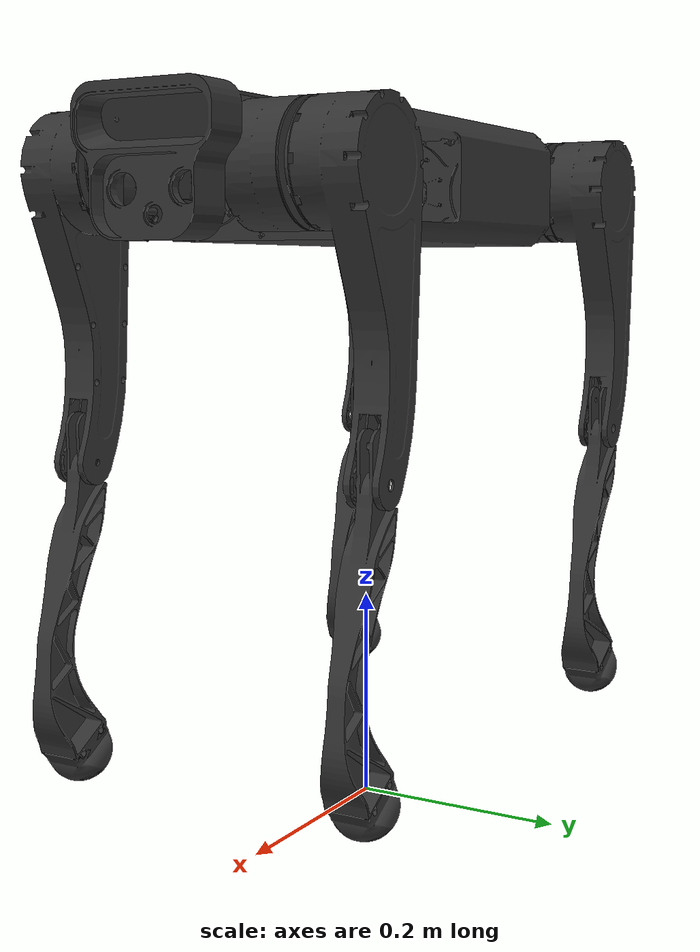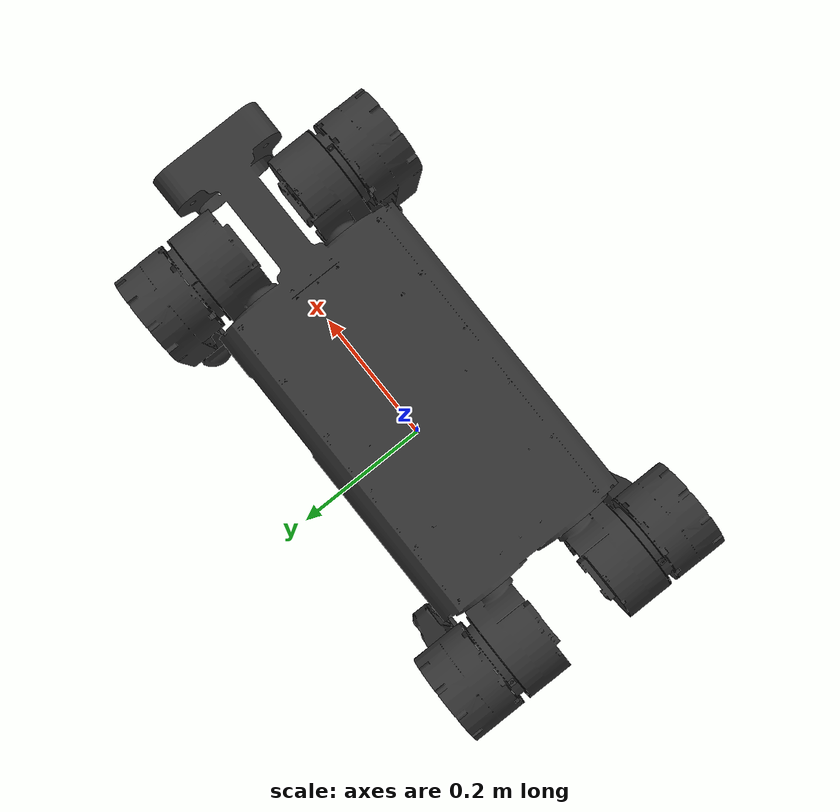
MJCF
<mujoco model="dhav1">
  <compiler angle="radian" meshdir="../meshes/"/>

  <default>
    <default class="dhav1">
      <default class="visual">
        <geom type="mesh" contype="0" conaffinity="0" group="2" material="dark"/>
      </default>
      <default class="collision">
        <geom group="3" type="capsule" contype="1" conaffinity="1"/>
        <default class="thigh1">
          <geom size="0.015" fromto="-0.02 0 0 -0.02 0 -0.16"/>
        </default>
        <default class="thigh2">
          <geom size="0.015" fromto="0 0 0 -0.02 0 -0.1"/>
        </default>
        <default class="thigh3">
          <geom size="0.015" fromto="-0.02 0 -0.16 0 0 -0.2"/>
        </default>
        <default class="calf1">
          <geom size="0.01" fromto="0 0 0 0.02 0 -0.13"/>
        </default>
        <default class="calf2">
          <geom size="0.01" fromto="0.02 0 -0.13 0 0 -0.2"/>
        </default>
        <default class="foot">
          <geom type="sphere" size="0.023" pos="0 0 -0.213"/>
        </default>
      </default>
    </default>
  </default>

  <asset>
    <material name="dark" rgba="0.2 0.2 0.2 1"/>

    <mesh class="dhav1" name="torso" content_type="model/stl" file="torso.STL"/>
    <mesh class="dhav1" name="FL_hip" content_type="model/stl" file="FL_hip.STL"/>
    <mesh class="dhav1" name="FL_thigh" content_type="model/stl" file="FL_thigh.STL"/>
    <mesh class="dhav1" name="FL_calf" content_type="model/stl" file="FL_calf.STL"/>
    <mesh class="dhav1" name="FL_foot" content_type="model/stl" file="FL_foot.STL"/>
    <mesh class="dhav1" name="FR_hip" content_type="model/stl" file="FR_hip.STL"/>
    <mesh class="dhav1" name="FR_thigh" content_type="model/stl" file="FR_thigh.STL"/>
    <mesh class="dhav1" name="FR_calf" content_type="model/stl" file="FR_calf.STL"/>
    <mesh class="dhav1" name="FR_foot" content_type="model/stl" file="FR_foot.STL"/>
    <mesh class="dhav1" name="RL_hip" content_type="model/stl" file="RL_hip.STL"/>
    <mesh class="dhav1" name="RL_thigh" content_type="model/stl" file="RL_thigh.STL"/>
    <mesh class="dhav1" name="RL_calf" content_type="model/stl" file="RL_calf.STL"/>
    <mesh class="dhav1" name="RL_foot" content_type="model/stl" file="RL_foot.STL"/>
    <mesh class="dhav1" name="RR_hip" content_type="model/stl" file="RR_hip.STL"/>
    <mesh class="dhav1" name="RR_thigh" content_type="model/stl" file="RR_thigh.STL"/>
    <mesh class="dhav1" name="RR_calf" content_type="model/stl" file="RR_calf.STL"/>
    <mesh class="dhav1" name="RR_foot" content_type="model/stl" file="RR_foot.STL"/>
  </asset>

  <worldbody>
    <body name="base" pos="0 0 0.6" childclass="dhav1">
      <light pos="0 0 2" mode="trackcom"/>
      <camera name="tracking" pos="0.846 -1.3 0.316" xyaxes="0.866 0.500 0.000 -0.171 0.296 0.940" mode="trackcom"/>
      <camera name="top" pos="-1 0 1" xyaxes="0 -1 0 0.7 0 0.7" mode="trackcom"/>
      <camera name="side" pos="0 -1 .3" xyaxes="1 0 0 0 1 2" mode="trackcom"/>
      <camera name="back" pos="-1 0 .3" xyaxes="0 -1 0 1 0 2" mode="trackcom"/>
      <site name="head" pos="0.3 0 0" rgba="1 0 0 1" size="0.02" group="5"/>
      <inertial pos="0.058346 -0.002972 0.001919" quat="-0.00108379 0.694429 -0.0029939 0.719554" mass="8.13186" diaginertia="0.200387 0.181624 0.0409207"/>
      <freejoint name="floating_base_joint"/>
      <geom class="visual" mesh="torso"/>
      <geom name="trunk_collision" class="collision" size="0.1781 0.1 0.057" type="box"/>
      <site name="imu" pos="-0.01592 -0.06659 -0.00617" group="5"/>
      <body name="FL_hip_link" pos="0.1885 0.0535 0">
        <inertial pos="0.0438365 0.0048295 0" quat="0.510387 0.510387 0.489392 0.489392" mass="0.8518" diaginertia="0.000976588 0.000794 0.000642812"/>
        <joint name="FL_hip_joint" pos="0 0 0" axis="1 0 0" range="-1.04 1.04" actuatorfrcrange="-34 34"/>
        <geom class="visual" mesh="FL_hip"/>
        <geom name="FL_hip_collision" class="collision" size="0.046 0.05" pos="0.06 0.06 0" quat="0.707388 0.706825 0 0" type="cylinder"/>
        <body name="FL_thigh_link" pos="0.06 0.04825 0">
          <inertial pos="-0.006 0.03519 -0.0624" quat="0.694501 0.048314 -0.0225824 0.717512" mass="1.3467" diaginertia="0.00814132 0.00789389 0.000867783"/>
          <joint name="FL_thigh_joint" pos="0 0 0" axis="0 1 0" range="-1.5236 3.4907" actuatorfrcrange="-34 34"/>
          <geom class="visual" mesh="FL_thigh"/>
          <geom name="FL_thigh_collision" class="collision" size="0.017 0.01225 0.09" pos="0 0.05 -0.14" type="box"/>
          <body name="FL_calf_link" pos="4e-05 0.0445 -0.25">
            <inertial pos="-0.040168 2.70503e-05 -0.050499" quat="0.674576 -0.211811 -0.211834 0.674692" mass="0.289011" diaginertia="0.00941552 0.00895443 0.000504294"/>
            <joint name="FL_calf_joint" pos="0 0 0" axis="0 1 0" range="-2.7227 -0.83776" actuatorfrcrange="-68 68"/>
            <geom class="visual" mesh="FL_calf"/>
            <geom name="FL_calf_collision1" class="collision" size="0.015 0.02" pos="0 0 -0.02" quat="0.997189 0 -0.0749297 0" type="cylinder"/>
            <geom name="FL_calf_collision2" class="collision" size="0.015 0.08" pos="0.025 0 -0.11" quat="0.988771 0 -0.149438 0" type="cylinder"/>
            <geom name="FL_calf_collision3" class="collision" size="0.015 0.03" pos="0.037 0 -0.205" quat="0.980067 0 0.198669 0" type="cylinder"/>
            <geom pos="4e-05 0 -0.27889" quat="1 0 0 0" class="visual" mesh="FL_foot"/>
            <geom name="FL_foot_collision" class="foot" size="0.025" pos="0.01004 0 -0.25889" type="sphere"/>
            <site name="FL" pos="0.01004 0 -0.25889" type="sphere" size="0.025"  group="5"/>
          </body>
        </body>
      </body>
      <body name="FR_hip_link" pos="0.1885 -0.0535 0">
        <inertial pos="0.0438365 0.0048295 0" quat="0.510387 0.510387 0.489392 0.489392" mass="0.8518" diaginertia="0.000976588 0.000794 0.000642812"/>
        <joint name="FR_hip_joint" pos="0 0 0" axis="1 0 0" range="-1.04 1.04" actuatorfrcrange="-34 34"/>
        <geom class="visual" mesh="FR_hip"/>
        <geom name="FR_hip_collision" class="collision" size="0.046 0.05" pos="0.06 -0.06 0" quat="0.707388 0.706825 0 0" type="cylinder"/>
        <body name="FR_thigh_link" pos="0.06 -0.04825 0">
          <inertial pos="-0.006 0.03519 -0.0624" quat="0.694501 0.048314 -0.0225824 0.717512" mass="1.3467" diaginertia="0.00814132 0.00789389 0.000867783"/>
          <joint name="FR_thigh_joint" pos="0 0 0" axis="0 1 0" range="-1.5236 3.4907" actuatorfrcrange="-34 34"/>
          <geom class="visual" mesh="FR_thigh"/>
          <geom name="FR_thigh_collision" class="collision" size="0.017 0.01225 0.09" pos="0 -0.05 -0.14" type="box"/>
          <body name="FR_calf_link" pos="4e-05 -0.0445 -0.25">
            <inertial pos="-0.040168 2.70503e-05 -0.050499" quat="0.674576 -0.211811 -0.211834 0.674692" mass="0.289011" diaginertia="0.00941552 0.00895443 0.000504294"/>
            <joint name="FR_calf_joint" pos="0 0 0" axis="0 1 0" range="-2.7227 -0.83776" actuatorfrcrange="-68 68"/>
            <geom class="visual" mesh="FR_calf"/>
            <geom name="FR_calf_collision1" class="collision" size="0.015 0.02" pos="0 0 -0.02" quat="0.997189 0 -0.0749297 0" type="cylinder"/>
            <geom name="FR_calf_collision2" class="collision" size="0.015 0.08" pos="0.025 0 -0.11" quat="0.988771 0 -0.149438 0" type="cylinder"/>
            <geom name="FR_calf_collision3" class="collision" size="0.015 0.03" pos="0.037 0 -0.205" quat="0.980067 0 0.198669 0" type="cylinder"/>
            <geom pos="4e-05 0 -0.27889" quat="1 0 0 0" class="visual" mesh="FR_foot"/>
            <geom name="FR_foot_collision" class="foot" size="0.025" pos="0.01004 0 -0.25889"/>
            <site name="FR" pos="0.01004 0 -0.25889" type="sphere" size="0.025"  group="5"/>
          </body>
        </body>
      </body>
      <body name="RL_hip_link" pos="-0.1885 0.0535 0">
        <inertial pos="0.0438365 0.0048295 0" quat="0.510387 0.510387 0.489392 0.489392" mass="0.858" diaginertia="0.000976588 0.000794 0.000642812"/>
        <joint name="RL_hip_joint" pos="0 0 0" axis="1 0 0" range="-1.04 1.04" actuatorfrcrange="-34 34"/>
        <geom class="visual" mesh="RL_hip"/>
        <geom name="RL_hip_collision" class="collision" size="0.046 0.05" pos="-0.06 0.06 0" quat="0.707388 0.706825 0 0" type="cylinder"/>
        <body name="RL_thigh_link" pos="-0.06 0.04825 0">
          <inertial pos="-0.006 0.03519 -0.0624" quat="0.694501 0.048314 -0.0225824 0.717512" mass="1.3495" diaginertia="0.00814132 0.00789389 0.000867783"/>
          <joint name="RL_thigh_joint" pos="0 0 0" axis="0 1 0" range="-1.5236 3.4907" actuatorfrcrange="-34 34"/>
          <geom class="visual" mesh="RL_thigh"/>
          <geom name="RL_thigh_collision" class="collision" size="0.017 0.01225 0.09" pos="0 0.05 -0.14" type="box"/>
          <body name="RL_calf_link" pos="-4e-05 0.0445 -0.25">
            <inertial pos="-0.040168 2.70503e-05 -0.050499" quat="0.674576 -0.211811 -0.211834 0.674692" mass="0.289011" diaginertia="0.00941552 0.00895443 0.000504294"/>
            <joint name="RL_calf_joint" pos="0 0 0" axis="0 1 0" range="-2.7227 -0.83776" actuatorfrcrange="-68 68"/>
            <geom class="visual" mesh="RL_calf"/>
            <geom name="RL_calf_collision1" class="collision" size="0.015 0.02" pos="0 0 -0.02" quat="0.997189 0 -0.0749297 0" type="cylinder"/>
            <geom name="RL_calf_collision2" class="collision" size="0.015 0.08" pos="0.025 0 -0.11" quat="0.988771 0 -0.149438 0" type="cylinder"/>
            <geom name="RL_calf_collision3" class="collision" size="0.015 0.03" pos="0.037 0 -0.205" quat="0.980067 0 0.198669 0" type="cylinder"/>
            <geom pos="4e-05 0 -0.27889" quat="1 0 0 0" class="visual" mesh="RL_foot"/>
            <geom name="RL_foot_collision" class="foot" size="0.025" pos="0.01004 0 -0.25889"/>
            <site name="RL" pos="0.01004 0 -0.25889" type="sphere" size="0.025"  group="5"/>
          </body>
        </body>
      </body>
      <body name="RR_hip_link" pos="-0.1885 -0.0535 0">
        <inertial pos="0.0438365 0.0048295 0" quat="0.510387 0.510387 0.489392 0.489392" mass="0.858" diaginertia="0.000976588 0.000794 0.000642812"/>
        <joint name="RR_hip_joint" pos="0 0 0" axis="1 0 0" range="-1.04 1.04" actuatorfrcrange="-34 34"/>
        <geom class="visual" mesh="RR_hip"/>
        <geom name="RR_hip_collision" class="collision" size="0.046 0.05" pos="-0.06 -0.06 0" quat="0.707388 0.706825 0 0" type="cylinder"/>
        <body name="RR_thigh_link" pos="-0.06 -0.04825 0">
          <inertial pos="-0.006 0.03519 -0.0624" quat="0.694501 0.048314 -0.0225824 0.717512" mass="1.3495" diaginertia="0.00814132 0.00789389 0.000867783"/>
          <joint name="RR_thigh_joint" pos="0 0 0" axis="0 1 0" range="-1.5236 3.4907" actuatorfrcrange="-34 34"/>
          <geom class="visual" mesh="RR_thigh"/>
          <geom name="RR_thigh_collision" class="collision" size="0.017 0.01225 0.09" pos="0 -0.05 -0.14" type="box"/>
          <body name="RR_calf_link" pos="-4e-05 -0.0445 -0.25">
            <inertial pos="-0.040168 2.70503e-05 -0.050499" quat="0.674576 -0.211811 -0.211834 0.674692" mass="0.289011" diaginertia="0.00941552 0.00895443 0.000504294"/>
            <joint name="RR_calf_joint" pos="0 0 0" axis="0 1 0" range="-2.7227 -0.83776" actuatorfrcrange="-68 68"/>
            <geom class="visual" mesh="RR_calf"/>
            <geom name="RR_calf_collision1" class="collision" size="0.015 0.02" pos="0 0 -0.02" quat="0.997189 0 -0.0749297 0" type="cylinder"/>
            <geom name="RR_calf_collision2" class="collision" size="0.015 0.08" pos="0.025 0 -0.11" quat="0.988771 0 -0.149438 0" type="cylinder"/>
            <geom name="RR_calf_collision3" class="collision" size="0.015 0.03" pos="0.037 0 -0.205" quat="0.980067 0 0.198669 0" type="cylinder"/>
            <geom pos="4e-05 0 -0.27889" quat="1 0 0 0" class="visual" mesh="RR_foot"/>
            <geom name="RR_foot_collision" class="foot" size="0.025" pos="0.01004 0 -0.25889"/>
            <site name="RR" pos="0.01004 0 -0.25889" type="sphere" size="0.025"  group="5"/>
          </body>
        </body>
      </body>
    </body>
  </worldbody>

  <sensor>
    <gyro name="imu_ang_vel" site="imu"/>
    <velocimeter name="imu_lin_vel" site="imu"/>
    <accelerometer name="imu_lin_acc" site="imu"/>
    <subtreeangmom name="root_angmom" body="base"/>
  </sensor>
</mujoco>
